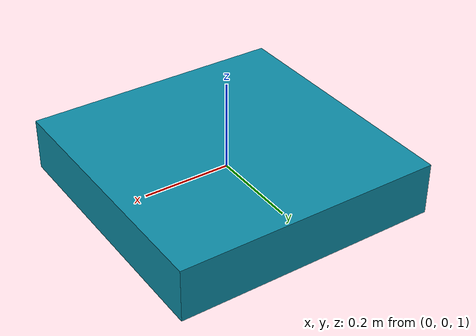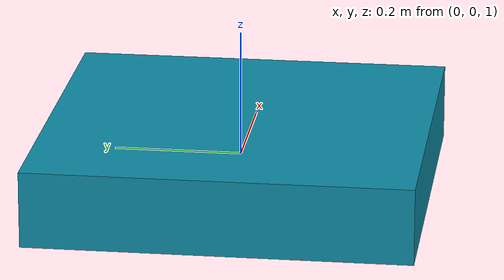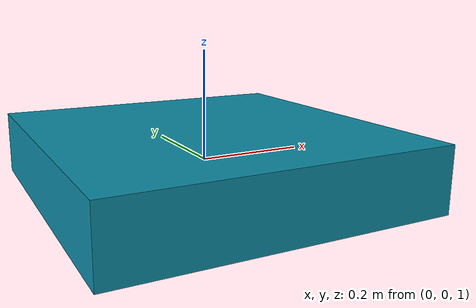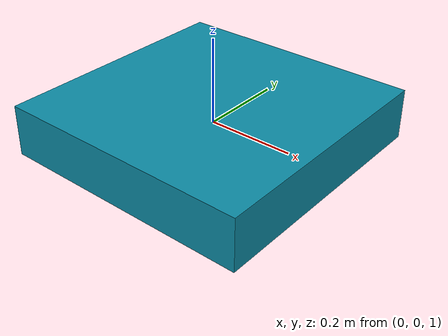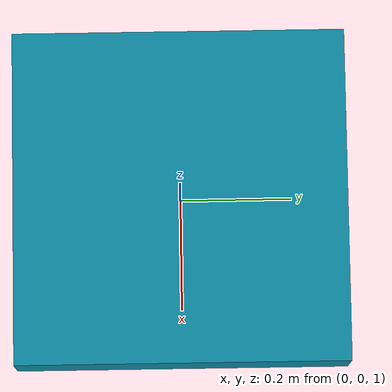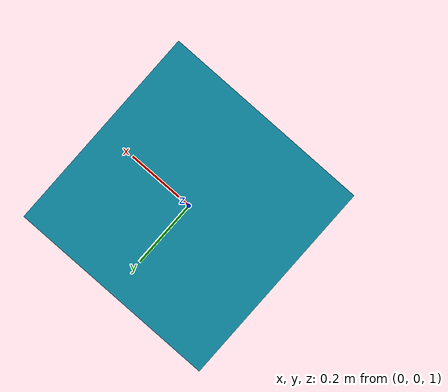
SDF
<?xml version="1.0"?>
<sdf version="1.7">
  <model name="drone_01">
    <pose>0 0 1 0 0 0</pose><static>false</static>
    <link name="base_link">
      <inertial><mass>1.5</mass><inertia><ixx>0.03</ixx><iyy>0.03</iyy><izz>0.05</izz></inertia></inertial>
      <visual name="body"><geometry><box><size>0.6 0.6 0.12</size></box></geometry><material><ambient>0.05 0.55 0.65 1</ambient></material></visual>
      <collision name="collision"><geometry><box><size>0.6 0.6 0.12</size></box></geometry></collision>
      <sensor name="inspection_camera" type="camera"><pose>0.15 0 -0.08 0 0 0</pose><camera><horizontal_fov>1.047</horizontal_fov><image><width>640</width><height>480</height></image></camera></sensor>
    </link>
  </model>
</sdf>
